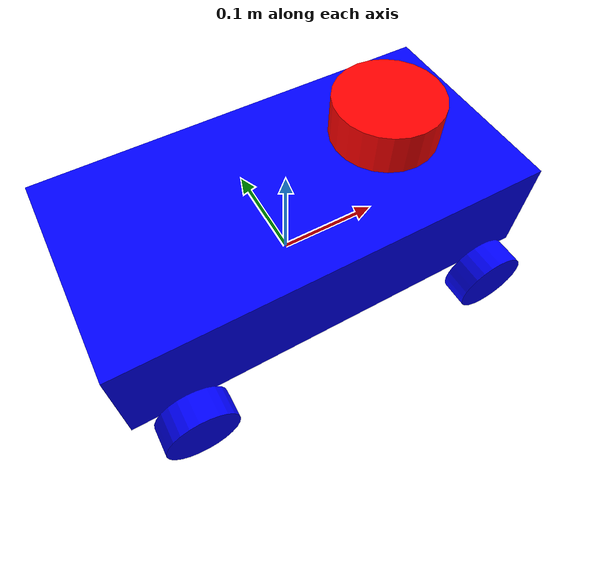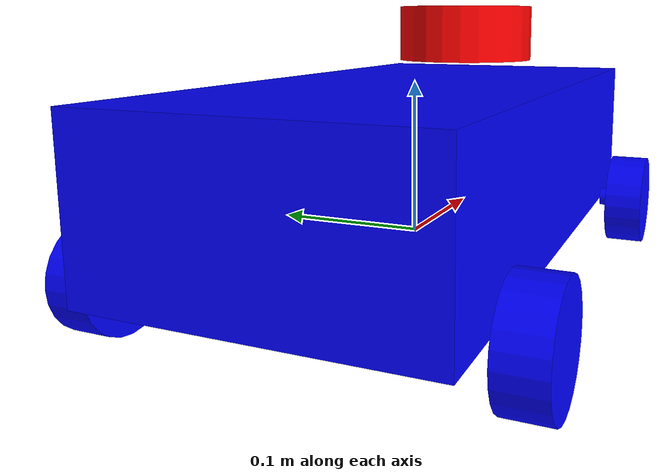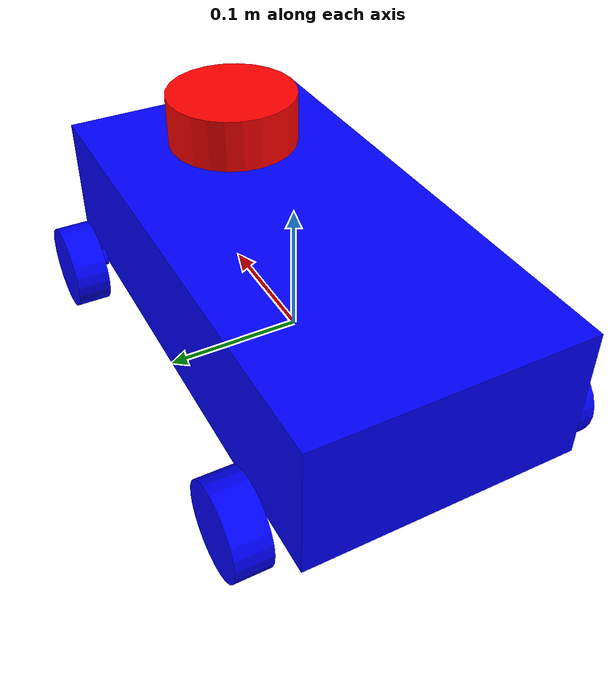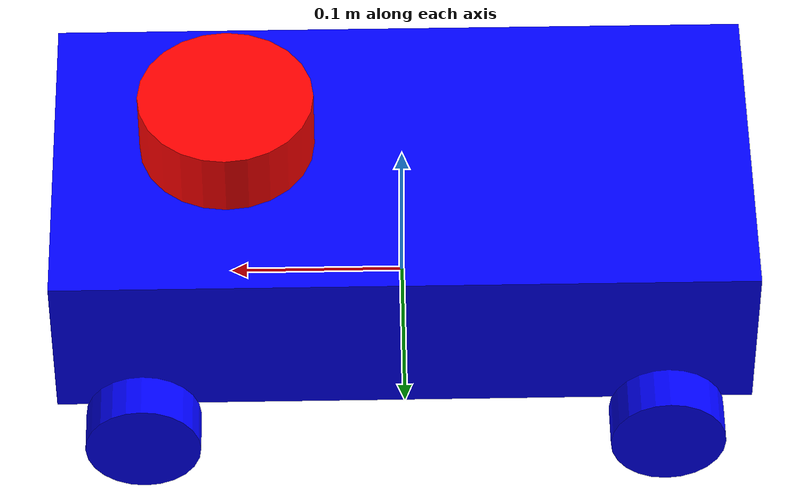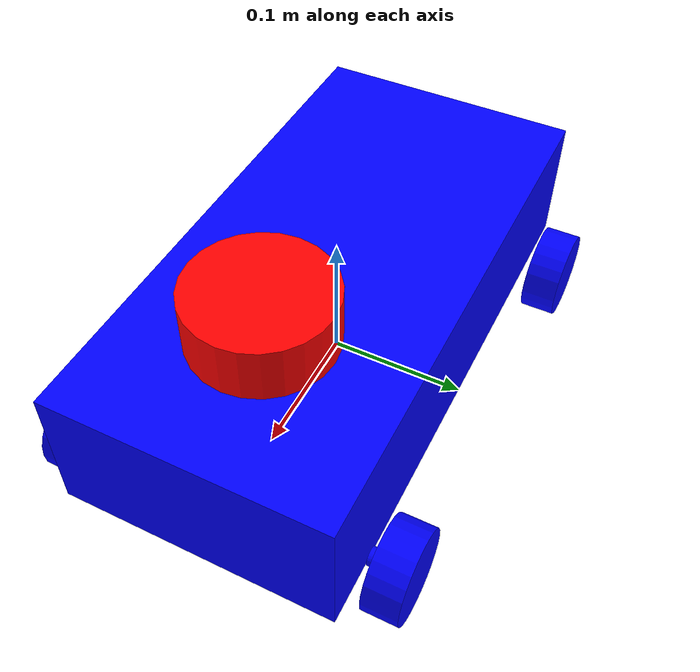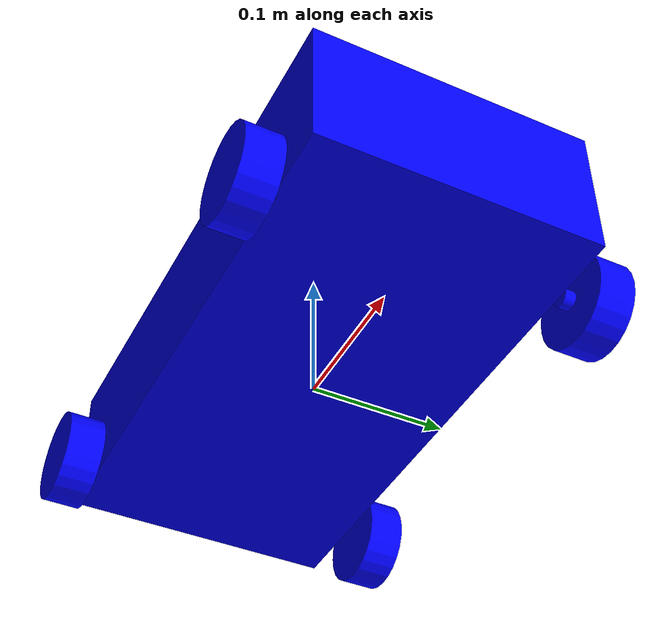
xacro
<?xml version="1.0"?>
<robot xmlns:xacro="http://www.ros.org/wiki/xacro" name="simple_car">

  <!-- Include shared macros for inertial definitions -->
  <xacro:include filename="inertial.xacro"/>

  <!-- definig colors -->
  <material name="blue">
    <color rgba="0 0 1 1"/>
  </material>

  <material name="red">
    <color rgba="1 0 0 1"/>
  </material>

  <!-- Wheel and hinge properties -->
  <xacro:property name="wheel_width" value="0.026"/>
  <xacro:property name="wheel_radius" value="0.033"/>
  <xacro:property name="hinge_width" value="0.008"/>
  <xacro:property name="hinge_radius" value="0.0066"/>

  <!-- Wheel macro -->
  <xacro:macro name="wheel" params="name">
    <link name="${name}">
      <visual>
        <origin xyz="0 0 0" rpy="${-pi/2} 0 0"/>
        <geometry>
          <cylinder length="${wheel_width}" radius="${wheel_radius}"/>
        </geometry>
        <material name="blue"/>
      </visual>
      <collision>
        <origin xyz="0 0 0" rpy="${-pi/2} 0 0"/>
        <geometry>
          <cylinder length="${wheel_width}" radius="${wheel_radius}"/>
        </geometry>
      </collision>
      <xacro:inertial_cylinder mass="0.1" length="${wheel_width}" radius="${wheel_radius}"/>
    </link>
  </xacro:macro>

  <!-- Hinge macro -->
  <xacro:macro name="hinge" params="name">
    <link name="${name}">
      <visual>
        <origin xyz="0 0 0" rpy="${-pi/2} 0 0"/>
        <geometry>
          <cylinder length="${hinge_width}" radius="${hinge_radius}"/>
        </geometry>
        <material name="blue"/>
      </visual>
      <collision>
        <origin xyz="0 0 0" rpy="${-pi/2} 0 0"/>
        <geometry>
          <cylinder length="${hinge_width}" radius="${hinge_radius}"/>
        </geometry>
      </collision>
      <xacro:inertial_cylinder mass="0.1" length="${hinge_width}" radius="${hinge_radius}"/>
    </link>
  </xacro:macro>

  <!-- Base footprint and chassis -->
  <link name="base_link"/>
  <joint name="base_footprint_joint" type="fixed">
    <parent link="base_link"/>
    <child link="base_footprint"/>
    <origin xyz="0 0 0" rpy="0 0 0"/>
  </joint>
  <link name="base_footprint"/>

  <link name="chassis_link">
    <visual>
      <geometry>
        <box size="0.4 0.2 0.1"/>
      </geometry>
      <origin xyz="0 0 0" rpy="0 0 0"/>
      <material name="blue">
        <color rgba="0 0 1 1"/>
      </material>
    </visual>
    <xacro:inertial_box mass="0.5" x="0.4" y="0.2" z="0.1"/>
  </link>
  <joint name="base_chassis_joint" type="fixed">
    <parent link="base_link"/>
    <child link="chassis_link"/>
    <origin xyz="0 0 0.05" rpy="0 0 0"/>
  </joint>

  <!-- Front left steering and wheel -->
  <xacro:hinge name="front_left_hinge"/>
  <joint name="front_left_hinge_joint" type="revolute">
    <parent link="chassis_link"/>
    <child link="front_left_hinge"/>
    <origin xyz="0.15 0.104 -0.05" rpy="0 0 0"/>
    <limit lower="-0.5236" upper="0.5236" velocity="20" effort="1"/>
    <axis xyz="0 0 1"/>
  </joint>
  <xacro:wheel name="front_left_link"/>
  <joint name="front_left_joint" type="continuous">
    <parent link="front_left_hinge"/>
    <child link="front_left_link"/>
    <origin xyz="0.0 0.017 0.0" rpy="0 0 0"/>
    <axis xyz="0 1 0"/>
  </joint>

  <!-- Front right steering and wheel -->
  <xacro:hinge name="front_right_hinge"/>
  <joint name="front_right_hinge_joint" type="revolute">
    <parent link="chassis_link"/>
    <child link="front_right_hinge"/>
    <origin xyz="0.15 -0.104 -0.05" rpy="0 0 0"/>
    <limit lower="-0.5236" upper="0.5236" velocity="20" effort="1"/>
    <axis xyz="0 0 1"/>
  </joint>
  <xacro:wheel name="front_right_link"/>
  <joint name="front_right_joint" type="continuous">
    <parent link="front_right_hinge"/>
    <child link="front_right_link"/>
    <origin xyz="0.0 -0.017 0.0" rpy="0 0 0"/>
    <axis xyz="0 1 0"/>
  </joint>

  <!-- Rear wheels -->
  <xacro:wheel name="rear_left_link"/>
  <joint name="rear_left_joint" type="continuous">
    <parent link="chassis_link"/>
    <child link="rear_left_link"/>
    <origin xyz="-0.15 0.121 -0.05" rpy="0 0 0"/>
    <axis xyz="0 1 0"/>
  </joint>
  <xacro:wheel name="rear_right_link"/>
  <joint name="rear_right_joint" type="continuous">
    <parent link="chassis_link"/>
    <child link="rear_right_link"/>
    <origin xyz="-0.15 -0.121 -0.05" rpy="0 0 0"/>
    <axis xyz="0 1 0"/>
  </joint>

  <!-- Include additional components (e.g., ROS2 ackermann) -->
  <xacro:include filename="ros2_ack.xacro"/>

  <!-- Laser frame mount -->
  <joint name="laser_joint" type="fixed">
    <parent link="chassis_link"/>
    <child link="laser_frame"/>
    <origin xyz="0.1 0.0 0.08" rpy="0 0 0"/>
  </joint>
  <link name="laser_frame">
    <visual>
      <geometry>
        <cylinder radius="0.05" length="0.04"/>
      </geometry>
      <material name="red"/>
    </visual>
    <collision>
      <geometry>
        <cylinder radius="0.05" length="0.04"/>
      </geometry>
    </collision>
    <xacro:inertial_cylinder mass="0.0001" length="0.04" radius="0.05"/>
  </link>

</robot>

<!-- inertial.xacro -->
<robot xmlns:xacro="http://www.ros.org/wiki/xacro" >

    <!-- Specify some standard inertial calculations https://en.wikipedia.org/wiki/List_of_moments_of_inertia -->
    <!-- These make use of xacro's mathematical functionality -->

    <xacro:macro name="inertial_box" params="mass x y z">
        <inertial>
            <mass value="${mass}" />
            <inertia ixx="${(1/12) * mass * (y*y+z*z)}" ixy="0.0" ixz="0.0"
                    iyy="${(1/12) * mass * (x*x+z*z)}" iyz="0.0"
                    izz="${(1/12) * mass * (x*x+y*y)}" />
        </inertial>
    </xacro:macro>

    <xacro:macro name="inertial_cylinder" params="mass length radius">
        <inertial>
            <origin xyz="0 0 0" rpy="${-pi/2} 0 0"/>    <!--NEW-->
            <mass value="${mass}" />
            <inertia ixx="${(1/12) * mass * (3*radius*radius + length*length)}" ixy="0.0" ixz="0.0"
                    iyy="${(1/12) * mass * (3*radius*radius + length*length)}" iyz="0.0"
                    izz="${(1/2) * mass * (radius*radius)}" />
        </inertial>
    </xacro:macro>
    <xacro:macro name="Inertial_box" params="mass x y z *origin">
        <inertial>
            <xacro:insert_block name="origin"/>
            <mass value="${mass}" />
            <inertia ixx="${(1/12) * mass * (y*y+z*z)}" ixy="0.0" ixz="0.0"
                    iyy="${(1/12) * mass * (x*x+z*z)}" iyz="0.0"
                    izz="${(1/12) * mass * (x*x+y*y)}" />
        </inertial>
    </xacro:macro>

    <xacro:macro name="Inertial_cylinder" params="mass length radius *origin">
        <inertial>
            <xacro:insert_block name="origin"/>
            <mass value="${mass}" />
            <inertia ixx="${(1/12) * mass * (3*radius*radius + length*length)}" ixy="0.0" ixz="0.0"
                    iyy="${(1/12) * mass * (3*radius*radius + length*length)}" iyz="0.0"
                    izz="${(1/2) * mass * (radius*radius)}" />
        </inertial>
    </xacro:macro>

</robot>
